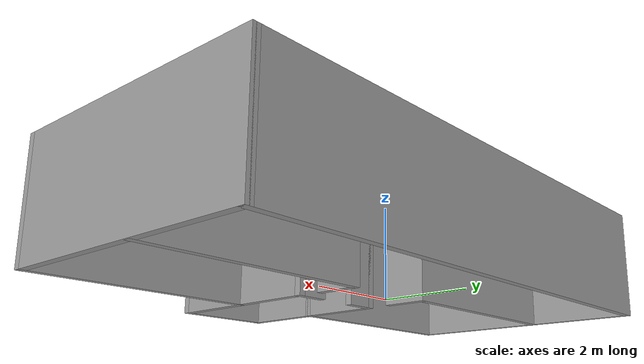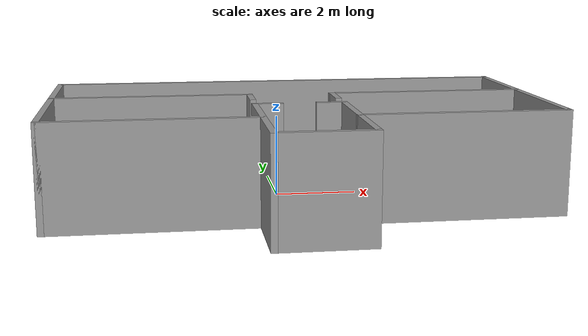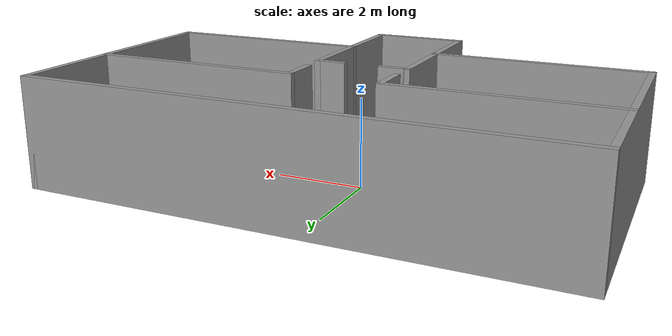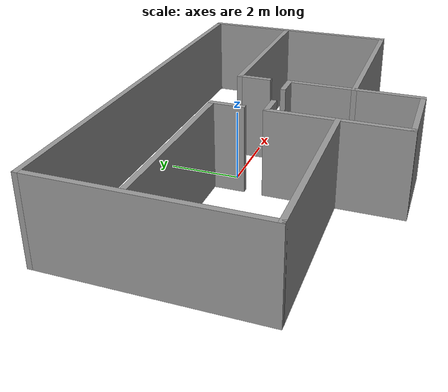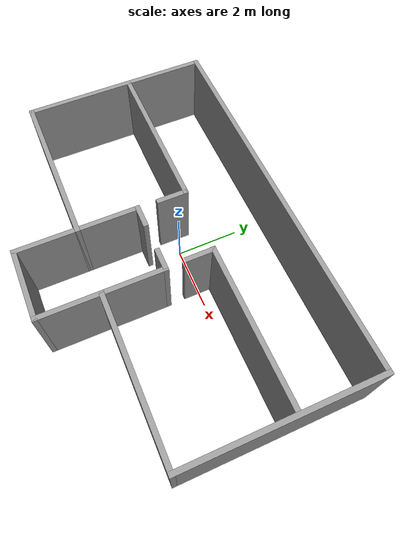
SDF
<?xml version='1.0'?>
<sdf version='1.7'>
  <model name='MAP'>
    <pose>0.438152 -0.878426 0 0 -0 0</pose>
    <link name='Wall_1'>
      <collision name='Wall_1_Collision'>
        <geometry>
          <box>
            <size>12 0.15 2.5</size>
          </box>
        </geometry>
        <pose>0 0 1.25 0 -0 0</pose>
      </collision>
      <visual name='Wall_1_Visual'>
        <pose>0 0 1.25 0 -0 0</pose>
        <geometry>
          <box>
            <size>12 0.15 2.5</size>
          </box>
        </geometry>
        <material>
          <script>
            <uri>file://media/materials/scripts/gazebo.material</uri>
            <name>Gazebo/Grey</name>
          </script>
          <ambient>1 1 1 1</ambient>
        </material>
        <meta>
          <layer>0</layer>
        </meta>
      </visual>
      <pose>-0 3.85 0 0 -0 0</pose>
    </link>
    <link name='Wall_13'>
      <collision name='Wall_13_Collision'>
        <geometry>
          <box>
            <size>5 0.15 2.5</size>
          </box>
        </geometry>
        <pose>0 0 1.25 0 -0 0</pose>
      </collision>
      <visual name='Wall_13_Visual'>
        <pose>0 0 1.25 0 -0 0</pose>
        <geometry>
          <box>
            <size>5 0.15 2.5</size>
          </box>
        </geometry>
        <material>
          <script>
            <uri>file://media/materials/scripts/gazebo.material</uri>
            <name>Gazebo/Grey</name>
          </script>
          <ambient>1 1 1 1</ambient>
        </material>
        <meta>
          <layer>0</layer>
        </meta>
      </visual>
      <pose>-3.5 -2 0 0 -0 0</pose>
    </link>
    <link name='Wall_14'>
      <collision name='Wall_14_Collision'>
        <geometry>
          <box>
            <size>2 0.15 2.5</size>
          </box>
        </geometry>
        <pose>0 0 1.25 0 -0 0</pose>
      </collision>
      <visual name='Wall_14_Visual'>
        <pose>0 0 1.25 0 -0 0</pose>
        <geometry>
          <box>
            <size>2 0.15 2.5</size>
          </box>
        </geometry>
        <material>
          <script>
            <uri>file://media/materials/scripts/gazebo.material</uri>
            <name>Gazebo/Grey</name>
          </script>
          <ambient>1 1 1 1</ambient>
        </material>
        <meta>
          <layer>0</layer>
        </meta>
      </visual>
      <pose>-1.075 -1.075 0 0 -0 1.5708</pose>
    </link>
    <link name='Wall_16'>
      <collision name='Wall_16_Collision'>
        <geometry>
          <box>
            <size>2 0.15 2.5</size>
          </box>
        </geometry>
        <pose>0 0 1.25 0 -0 0</pose>
      </collision>
      <visual name='Wall_16_Visual'>
        <pose>0 0 1.25 0 -0 0</pose>
        <geometry>
          <box>
            <size>2 0.15 2.5</size>
          </box>
        </geometry>
        <material>
          <script>
            <uri>file://media/materials/scripts/gazebo.material</uri>
            <name>Gazebo/Grey</name>
          </script>
          <ambient>1 1 1 1</ambient>
        </material>
        <meta>
          <layer>0</layer>
        </meta>
      </visual>
      <pose>1.075 -1.075 0 0 -0 1.5708</pose>
    </link>
    <link name='Wall_19'>
      <collision name='Wall_19_Collision'>
        <geometry>
          <box>
            <size>2 0.15 2.5</size>
          </box>
        </geometry>
        <pose>0 0 1.25 0 -0 0</pose>
      </collision>
      <visual name='Wall_19_Visual'>
        <pose>0 0 1.25 0 -0 0</pose>
        <geometry>
          <box>
            <size>2 0.15 2.5</size>
          </box>
        </geometry>
        <material>
          <script>
            <uri>file://media/materials/scripts/gazebo.material</uri>
            <name>Gazebo/Grey</name>
          </script>
          <ambient>1 1 1 1</ambient>
        </material>
        <meta>
          <layer>0</layer>
        </meta>
      </visual>
      <pose>-1.075 -2.925 0 0 -0 -1.5708</pose>
    </link>
    <link name='Wall_21'>
      <collision name='Wall_21_Collision'>
        <geometry>
          <box>
            <size>2 0.15 2.5</size>
          </box>
        </geometry>
        <pose>0 0 1.25 0 -0 0</pose>
      </collision>
      <visual name='Wall_21_Visual'>
        <pose>0 0 1.25 0 -0 0</pose>
        <geometry>
          <box>
            <size>2 0.15 2.5</size>
          </box>
        </geometry>
        <material>
          <script>
            <uri>file://media/materials/scripts/gazebo.material</uri>
            <name>Gazebo/Grey</name>
          </script>
          <ambient>1 1 1 1</ambient>
        </material>
        <meta>
          <layer>0</layer>
        </meta>
      </visual>
      <pose>1.075 -2.925 0 0 -0 -1.5708</pose>
    </link>
    <link name='Wall_22'>
      <collision name='Wall_22_Collision'>
        <geometry>
          <box>
            <size>2.3 0.15 2.5</size>
          </box>
        </geometry>
        <pose>0 0 1.25 0 -0 0</pose>
      </collision>
      <visual name='Wall_22_Visual'>
        <pose>0 0 1.25 0 -0 0</pose>
        <geometry>
          <box>
            <size>2.3 0.15 2.5</size>
          </box>
        </geometry>
        <material>
          <script>
            <uri>file://media/materials/scripts/gazebo.material</uri>
            <name>Gazebo/Grey</name>
          </script>
          <ambient>1 1 1 1</ambient>
        </material>
        <meta>
          <layer>0</layer>
        </meta>
      </visual>
      <pose>-0 -3.85 0 0 -0 3.14159</pose>
    </link>
    <link name='Wall_24'>
      <collision name='Wall_24_Collision'>
        <geometry>
          <box>
            <size>0.75 0.15 2.5</size>
          </box>
        </geometry>
        <pose>0 0 1.25 0 -0 0</pose>
      </collision>
      <visual name='Wall_24_Visual'>
        <pose>0 0 1.25 0 -0 0</pose>
        <geometry>
          <box>
            <size>0.75 0.15 2.5</size>
          </box>
        </geometry>
        <material>
          <script>
            <uri>file://media/materials/scripts/gazebo.material</uri>
            <name>Gazebo/Grey</name>
          </script>
          <ambient>1 1 1 1</ambient>
        </material>
        <meta>
          <layer>0</layer>
        </meta>
      </visual>
      <pose>-0.775 -0.15 0 0 -0 0</pose>
    </link>
    <link name='Wall_26'>
      <collision name='Wall_26_Collision'>
        <geometry>
          <box>
            <size>0.75 0.15 2.5</size>
          </box>
        </geometry>
        <pose>0 0 1.25 0 -0 0</pose>
      </collision>
      <visual name='Wall_26_Visual'>
        <pose>0 0 1.25 0 -0 0</pose>
        <geometry>
          <box>
            <size>0.75 0.15 2.5</size>
          </box>
        </geometry>
        <material>
          <script>
            <uri>file://media/materials/scripts/gazebo.material</uri>
            <name>Gazebo/Grey</name>
          </script>
          <ambient>1 1 1 1</ambient>
        </material>
        <meta>
          <layer>0</layer>
        </meta>
      </visual>
      <pose>0.775 -0.15 0 0 -0 3.14159</pose>
    </link>
    <link name='Wall_28'>
      <collision name='Wall_28_Collision'>
        <geometry>
          <box>
            <size>5 0.15 2.5</size>
          </box>
        </geometry>
        <pose>0 0 1.25 0 -0 0</pose>
      </collision>
      <visual name='Wall_28_Visual'>
        <pose>0 0 1.25 0 -0 0</pose>
        <geometry>
          <box>
            <size>5 0.15 2.5</size>
          </box>
        </geometry>
        <material>
          <script>
            <uri>file://media/materials/scripts/gazebo.material</uri>
            <name>Gazebo/Grey</name>
          </script>
          <ambient>1 1 1 1</ambient>
        </material>
        <meta>
          <layer>0</layer>
        </meta>
      </visual>
      <pose>-3.48381 1.3557 0 0 -0 0</pose>
    </link>
    <link name='Wall_29'>
      <collision name='Wall_29_Collision'>
        <geometry>
          <box>
            <size>1 0.15 2.5</size>
          </box>
        </geometry>
        <pose>0 0 1.25 0 -0 0</pose>
      </collision>
      <visual name='Wall_29_Visual'>
        <pose>0 0 1.25 0 -0 0</pose>
        <geometry>
          <box>
            <size>1 0.15 2.5</size>
          </box>
        </geometry>
        <material>
          <script>
            <uri>file://media/materials/scripts/gazebo.material</uri>
            <name>Gazebo/Grey</name>
          </script>
          <ambient>1 1 1 1</ambient>
        </material>
        <meta>
          <layer>0</layer>
        </meta>
      </visual>
      <pose>-1.05881 0.930695 0 0 -0 -1.5708</pose>
    </link>
    <link name='Wall_3'>
      <collision name='Wall_3_Collision'>
        <geometry>
          <box>
            <size>6 0.15 2.5</size>
          </box>
        </geometry>
        <pose>0 0 1.25 0 -0 0</pose>
      </collision>
      <visual name='Wall_3_Visual'>
        <pose>0 0 1.25 0 -0 0</pose>
        <geometry>
          <box>
            <size>6 0.15 2.5</size>
          </box>
        </geometry>
        <material>
          <script>
            <uri>file://media/materials/scripts/gazebo.material</uri>
            <name>Gazebo/Grey</name>
          </script>
          <ambient>1 1 1 1</ambient>
        </material>
        <meta>
          <layer>0</layer>
        </meta>
      </visual>
      <pose>-5.925 0.925 0 0 -0 -1.5708</pose>
    </link>
    <link name='Wall_31'>
      <collision name='Wall_31_Collision'>
        <geometry>
          <box>
            <size>5 0.15 2.5</size>
          </box>
        </geometry>
        <pose>0 0 1.25 0 -0 0</pose>
      </collision>
      <visual name='Wall_31_Visual'>
        <pose>0 0 1.25 0 -0 0</pose>
        <geometry>
          <box>
            <size>5 0.15 2.5</size>
          </box>
        </geometry>
        <material>
          <script>
            <uri>file://media/materials/scripts/gazebo.material</uri>
            <name>Gazebo/Grey</name>
          </script>
          <ambient>1 1 1 1</ambient>
        </material>
        <meta>
          <layer>0</layer>
        </meta>
      </visual>
      <pose>3.46399 1.30956 0 0 -0 3.14159</pose>
    </link>
    <link name='Wall_34'>
      <collision name='Wall_34_Collision'>
        <geometry>
          <box>
            <size>1 0.15 2.5</size>
          </box>
        </geometry>
        <pose>0 0 1.25 0 -0 0</pose>
      </collision>
      <visual name='Wall_34_Visual'>
        <pose>0 0 1.25 0 -0 0</pose>
        <geometry>
          <box>
            <size>1 0.15 2.5</size>
          </box>
        </geometry>
        <material>
          <script>
            <uri>file://media/materials/scripts/gazebo.material</uri>
            <name>Gazebo/Grey</name>
          </script>
          <ambient>1 1 1 1</ambient>
        </material>
        <meta>
          <layer>0</layer>
        </meta>
      </visual>
      <pose>1.04655 0.884557 0 0 -0 -1.5708</pose>
    </link>
    <link name='Wall_6'>
      <collision name='Wall_6_Collision'>
        <geometry>
          <box>
            <size>6 0.15 2.5</size>
          </box>
        </geometry>
        <pose>0 0 1.25 0 -0 0</pose>
      </collision>
      <visual name='Wall_6_Visual'>
        <pose>0 0 1.25 0 -0 0</pose>
        <geometry>
          <box>
            <size>6 0.15 2.5</size>
          </box>
        </geometry>
        <material>
          <script>
            <uri>file://media/materials/scripts/gazebo.material</uri>
            <name>Gazebo/Grey</name>
          </script>
          <ambient>1 1 1 1</ambient>
        </material>
        <meta>
          <layer>0</layer>
        </meta>
      </visual>
      <pose>5.925 0.925 0 0 -0 -1.5708</pose>
    </link>
    <link name='Wall_7'>
      <collision name='Wall_7_Collision'>
        <geometry>
          <box>
            <size>5 0.15 2.5</size>
          </box>
        </geometry>
        <pose>0 0 1.25 0 -0 0</pose>
      </collision>
      <visual name='Wall_7_Visual'>
        <pose>0 0 1.25 0 -0 0</pose>
        <geometry>
          <box>
            <size>5 0.15 2.5</size>
          </box>
        </geometry>
        <material>
          <script>
            <uri>file://media/materials/scripts/gazebo.material</uri>
            <name>Gazebo/Grey</name>
          </script>
          <ambient>1 1 1 1</ambient>
        </material>
        <meta>
          <layer>0</layer>
        </meta>
      </visual>
      <pose>3.5 -2 0 0 -0 3.14159</pose>
    </link>
    <static>1</static>
  </model>
</sdf>
